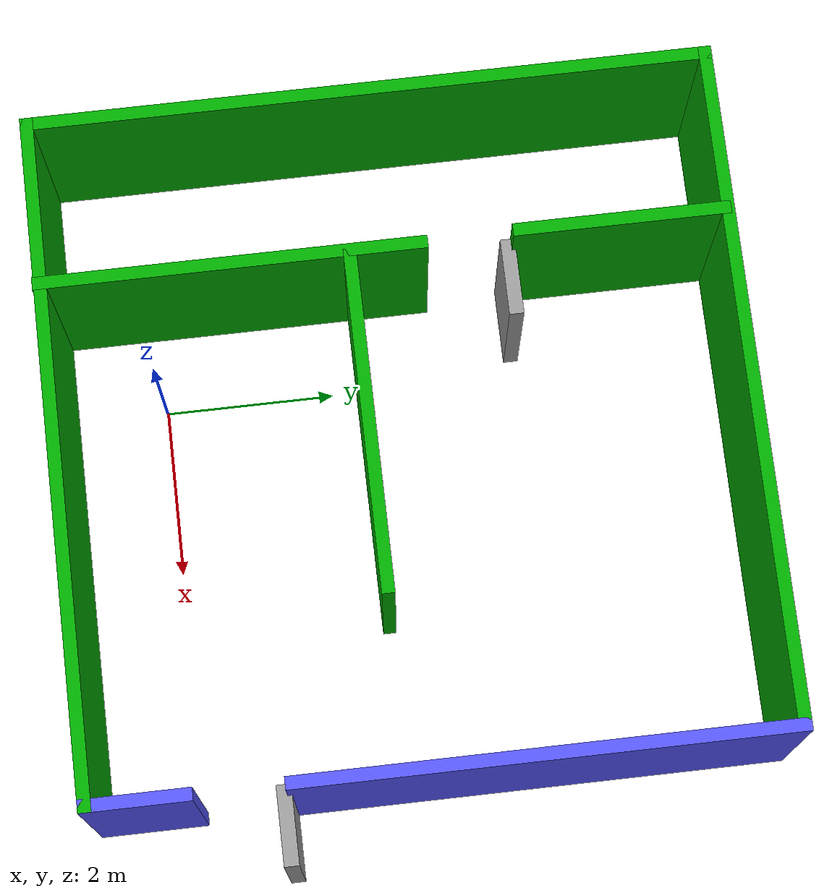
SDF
<?xml version='1.0'?>
<sdf version='1.6'>
  <model name='mybuilding'>
    <pose frame=''>1.005 2.76825 0 0 -0 0</pose>
    <link name='Door_0'>
      <collision name='Door_0_Collision'>
        <geometry>
          <box>
            <size>0.9 0.17 2</size>
          </box>
        </geometry>
        <pose frame=''>0 0 1 0 -0 0</pose>
      </collision>
      <visual name='Door_0_Visual'>
        <pose frame=''>0 0 1 0 -0 0</pose>
        <geometry>
          <box>
            <size>0.9 0.17 2</size>
          </box>
        </geometry>
        <material>
          <script>
            <uri>file://media/materials/scripts/gazebo.material</uri>
            <name>Gazebo/Grey</name>
          </script>
        </material>
      </visual>
      <pose frame=''>-1.64471 1.42964 0 0 -0 0</pose>
    </link>
    <link name='Door_2'>
      <collision name='Door_2_Collision'>
        <geometry>
          <box>
            <size>0.9 0.17 2</size>
          </box>
        </geometry>
        <pose frame=''>0 0 1 0 -0 0</pose>
      </collision>
      <visual name='Door_2_Visual'>
        <pose frame=''>0 0 1 0 -0 0</pose>
        <geometry>
          <box>
            <size>0.9 0.17 2</size>
          </box>
        </geometry>
        <material>
          <script>
            <uri>file://media/materials/scripts/gazebo.material</uri>
            <name>Gazebo/Grey</name>
          </script>
        </material>
      </visual>
      <pose frame=''>4.32193 -1.77573 0 0 -0 0</pose>
    </link>
    <link name='Wall_0'>
      <collision name='Wall_0_Collision'>
        <geometry>
          <box>
            <size>8 0.15 2.5</size>
          </box>
        </geometry>
        <pose frame=''>0 0 1.25 0 -0 0</pose>
      </collision>
      <visual name='Wall_0_Visual'>
        <pose frame=''>0 0 1.25 0 -0 0</pose>
        <geometry>
          <box>
            <size>8 0.15 2.5</size>
          </box>
        </geometry>
        <material>
          <script>
            <uri>file://media/materials/scripts/gazebo.material</uri>
            <name>Gazebo/Grey</name>
          </script>
          <ambient>0 0.666667 0 1</ambient>
        </material>
      </visual>
      <pose frame=''>-3.925 0.006746 0 0 -0 1.5708</pose>
    </link>
    <link name='Wall_1'>
      <collision name='Wall_1_Collision'>
        <geometry>
          <box>
            <size>8 0.15 2.5</size>
          </box>
        </geometry>
        <pose frame=''>0 0 1.25 0 -0 0</pose>
      </collision>
      <visual name='Wall_1_Visual'>
        <pose frame=''>0 0 1.25 0 -0 0</pose>
        <geometry>
          <box>
            <size>8 0.15 2.5</size>
          </box>
        </geometry>
        <material>
          <script>
            <uri>file://media/materials/scripts/gazebo.material</uri>
            <name>Gazebo/Grey</name>
          </script>
          <ambient>0 0.666667 0 1</ambient>
        </material>
      </visual>
      <pose frame=''>0 3.93175 0 0 -0 0</pose>
    </link>
    <link name='Wall_13'>
      <collision name='Wall_13_Collision'>
        <geometry>
          <box>
            <size>1.25 0.15 2.5</size>
          </box>
        </geometry>
        <pose frame=''>0 0 1.25 0 -0 0</pose>
      </collision>
      <visual name='Wall_13_Visual'>
        <pose frame=''>0 0 1.25 0 -0 0</pose>
        <geometry>
          <box>
            <size>1.25 0.15 2.5</size>
          </box>
        </geometry>
        <material>
          <script>
            <uri>file://media/materials/scripts/gazebo.material</uri>
            <name>Gazebo/Grey</name>
          </script>
          <ambient>0.333333 0.333333 1 1</ambient>
        </material>
      </visual>
      <pose frame=''>3.925 -3.36825 0 0 -0 1.5708</pose>
    </link>
    <link name='Wall_15'>
      <collision name='Wall_15_Collision'>
        <geometry>
          <box>
            <size>4 0.15 2.5</size>
          </box>
        </geometry>
        <pose frame=''>0 0 1.25 0 -0 0</pose>
      </collision>
      <visual name='Wall_15_Visual'>
        <pose frame=''>0 0 1.25 0 -0 0</pose>
        <geometry>
          <box>
            <size>4 0.15 2.5</size>
          </box>
        </geometry>
        <material>
          <script>
            <uri>file://media/materials/scripts/gazebo.material</uri>
            <name>Gazebo/Grey</name>
          </script>
          <ambient>0 0.666667 0 1</ambient>
        </material>
      </visual>
      <pose frame=''>-0.02369 -0.400236 0 0 -0 0</pose>
    </link>
    <link name='Wall_2'>
      <collision name='Wall_2_Collision'>
        <geometry>
          <box>
            <size>5.75 0.15 2.5</size>
          </box>
        </geometry>
        <pose frame=''>0 0 1.25 0 -0 0</pose>
      </collision>
      <visual name='Wall_2_Visual'>
        <pose frame=''>0 0 1.25 0 -0 0</pose>
        <geometry>
          <box>
            <size>5.75 0.15 2.5</size>
          </box>
        </geometry>
        <material>
          <script>
            <uri>file://media/materials/scripts/gazebo.material</uri>
            <name>Gazebo/Grey</name>
          </script>
          <ambient>0.333333 0.333333 1 1</ambient>
        </material>
      </visual>
      <pose frame=''>3.925 1.13175 0 0 0 -1.5708</pose>
    </link>
    <link name='Wall_4'>
      <collision name='Wall_4_Collision'>
        <geometry>
          <box>
            <size>8 0.15 2.5</size>
          </box>
        </geometry>
        <pose frame=''>0 0 1.25 0 -0 0</pose>
      </collision>
      <visual name='Wall_4_Visual'>
        <pose frame=''>0 0 1.25 0 -0 0</pose>
        <geometry>
          <box>
            <size>8 0.15 2.5</size>
          </box>
        </geometry>
        <material>
          <script>
            <uri>file://media/materials/scripts/gazebo.material</uri>
            <name>Gazebo/Grey</name>
          </script>
          <ambient>0 0.666667 0 1</ambient>
        </material>
      </visual>
      <pose frame=''>0 -3.91825 0 0 -0 0</pose>
    </link>
    <link name='Wall_6'>
      <collision name='Wall_6_Collision'>
        <geometry>
          <box>
            <size>2.5 0.15 2.5</size>
          </box>
        </geometry>
        <pose frame=''>0 0 1.25 0 -0 0</pose>
      </collision>
      <visual name='Wall_6_Visual'>
        <pose frame=''>0 0 1.25 0 -0 0</pose>
        <geometry>
          <box>
            <size>2.5 0.15 2.5</size>
          </box>
        </geometry>
        <material>
          <script>
            <uri>file://media/materials/scripts/gazebo.material</uri>
            <name>Gazebo/Grey</name>
          </script>
          <ambient>0 0.666667 0 1</ambient>
        </material>
      </visual>
      <pose frame=''>-2.03367 2.71762 0 0 0 -1.5708</pose>
    </link>
    <link name='Wall_9'>
      <collision name='Wall_9_Collision'>
        <geometry>
          <box>
            <size>4.5 0.15 2.5</size>
          </box>
        </geometry>
        <pose frame=''>0 0 1.25 0 -0 0</pose>
      </collision>
      <visual name='Wall_9_Visual'>
        <pose frame=''>0 0 1.25 0 -0 0</pose>
        <geometry>
          <box>
            <size>4.5 0.15 2.5</size>
          </box>
        </geometry>
        <material>
          <script>
            <uri>file://media/materials/scripts/gazebo.material</uri>
            <name>Gazebo/Grey</name>
          </script>
          <ambient>0 0.666667 0 1</ambient>
        </material>
      </visual>
      <pose frame=''>-2.00881 -1.75675 0 0 0 -1.5708</pose>
    </link>
    <static>1</static>
  </model>
</sdf>
